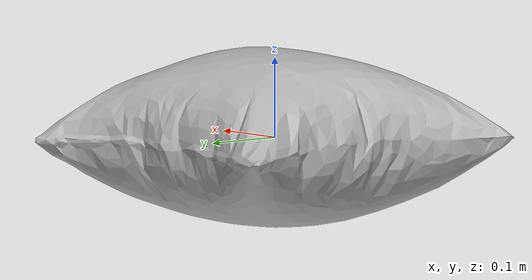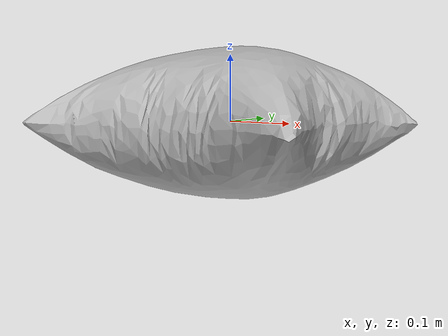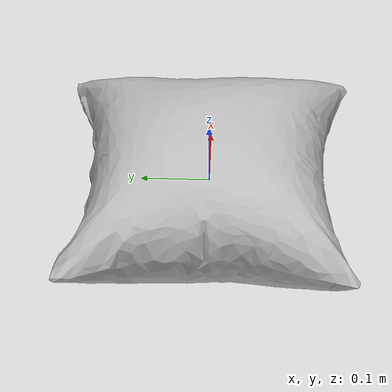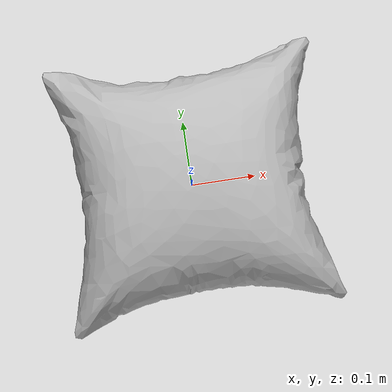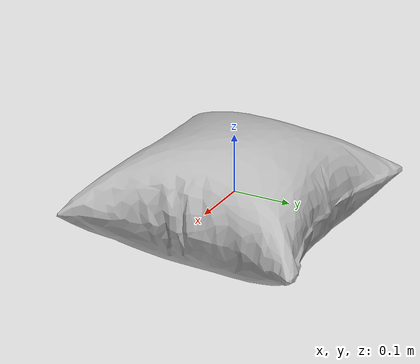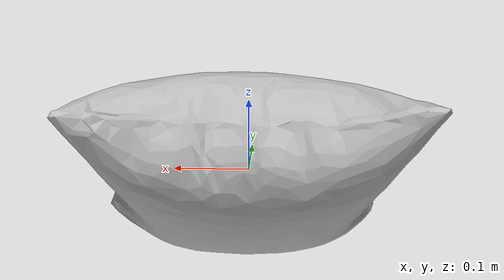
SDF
<?xml version="1.0" ?>
<sdf version="1.4">
    <model name='pillow_kaba'>
      <link name='link'>
        <pose>0 0 0 0 0 0</pose>
        <inertial>
          <mass>0.3</mass>
          <inertia>
            <ixx>0.005662</ixx>
            <ixy>0</ixy>
            <ixz>0</ixz>
            <iyy>0.005833</iyy>
            <iyz>0</iyz>
            <izz>0.009075</izz>
          </inertia>
        </inertial>
        <visual name='pillow_kaba'>
          <pose>0.0 0.0 0.0 0 0 0</pose>
          <geometry>
            <mesh>
              <uri>model://pillow_kaba/meshes/pillow_kaba.dae</uri>
            </mesh>
          </geometry>

        </visual>
        <collision name='pillow_kaba'>
          <pose>0.0 0.0 0.0 0 0 0</pose>
          <geometry>
            <mesh>
              <uri>model://pillow_kaba/meshes/pillow_kaba.dae</uri>
            </mesh>
          </geometry>
          <max_contacts>10</max_contacts>
          <surface>
            <bounce>
              <restitution_coefficient>0.2</restitution_coefficient>
              <threshold>0</threshold>
            </bounce>
            <friction>
              <ode/>
            </friction>
            <contact>
              <ode/>
            </contact>
          </surface>
        </collision>
        <velocity_decay>
          <linear>0</linear>
          <angular>0</angular>
        </velocity_decay>
        <self_collide>0</self_collide>
        <kinematic>0</kinematic>
        <gravity>1</gravity>
      </link>
      <static>0</static>
    </model>
</sdf>
